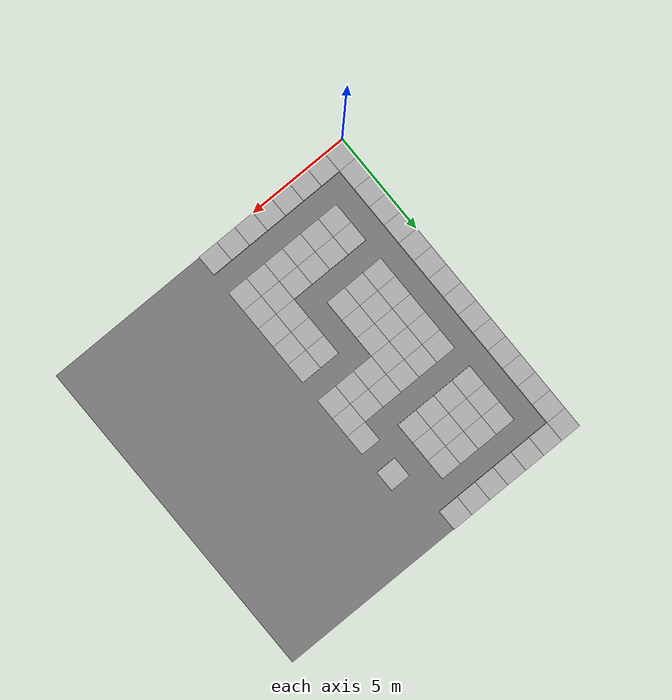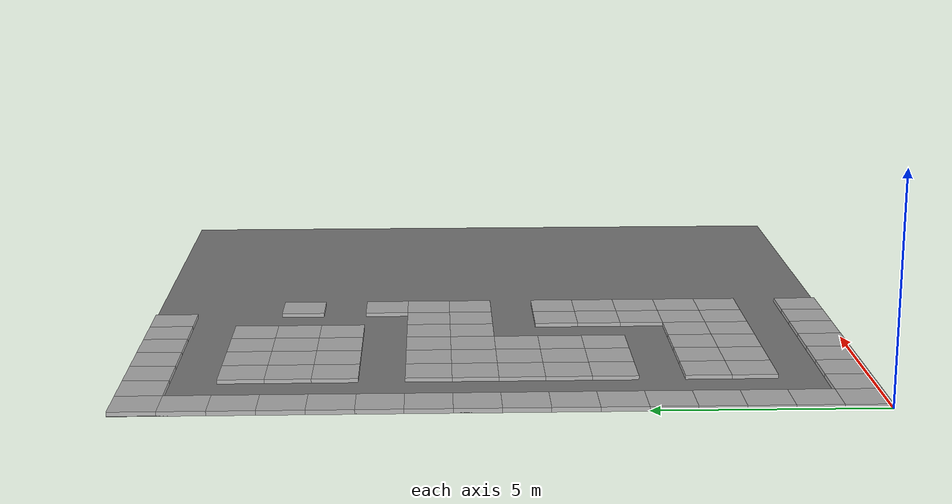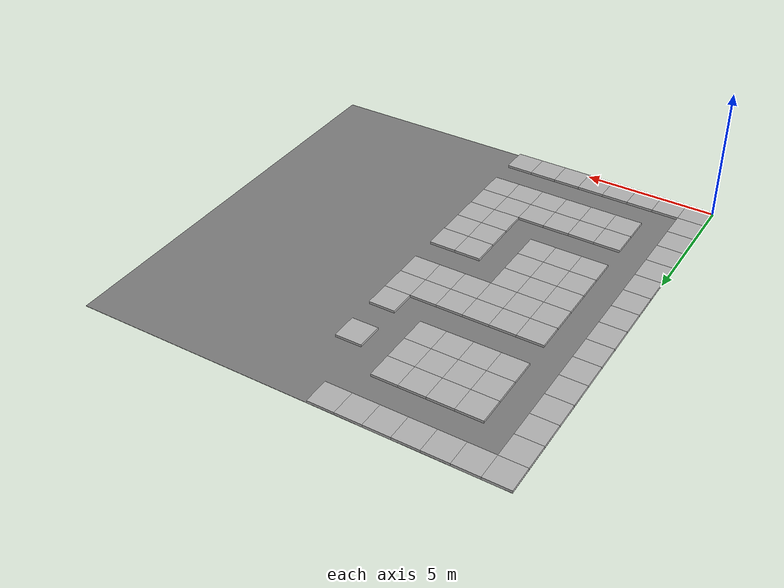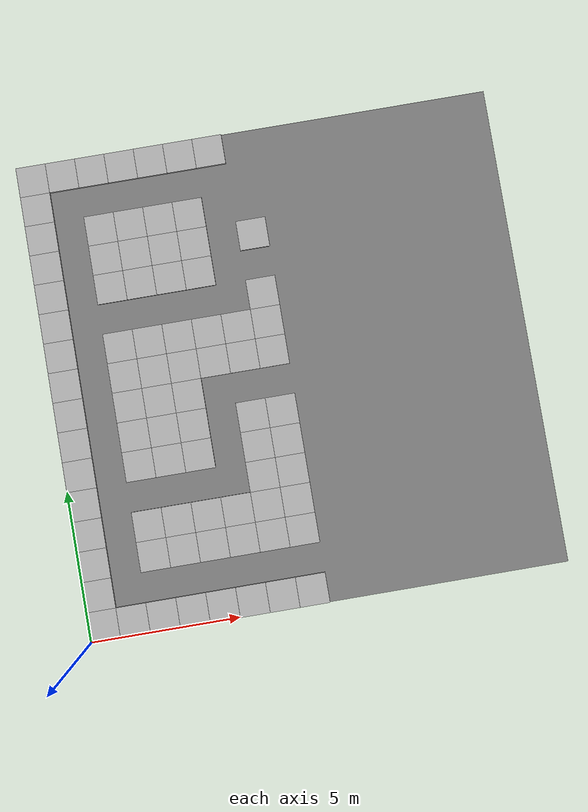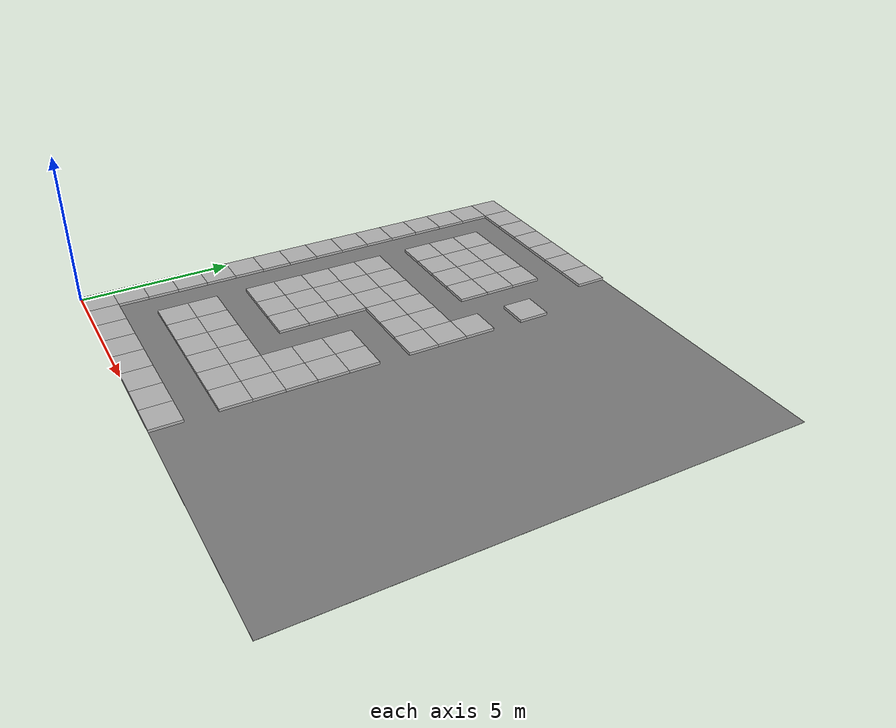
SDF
<sdf version="1.6">
 <world name="default">
  <include><uri>model://sun</uri></include>
  <model name="x0_y0">
   <static>true</static>
   <link name="link">
    <pose>0.5 0.5 0.05 0 0 0</pose>
    <visual name="visual"><geometry><box><size>1 1 0.1</size></box></geometry></visual>
    <collision name="collision"><geometry><box><size>1 1 0.1</size></box></geometry></collision>
   </link>
  </model>
  <model name="x0_y1">
   <static>true</static>
   <link name="link">
    <pose>0.5 1.5 0.05 0 0 0</pose>
    <visual name="visual"><geometry><box><size>1 1 0.1</size></box></geometry></visual>
    <collision name="collision"><geometry><box><size>1 1 0.1</size></box></geometry></collision>
   </link>
  </model>
  <model name="x0_y2">
   <static>true</static>
   <link name="link">
    <pose>0.5 2.5 0.05 0 0 0</pose>
    <visual name="visual"><geometry><box><size>1 1 0.1</size></box></geometry></visual>
    <collision name="collision"><geometry><box><size>1 1 0.1</size></box></geometry></collision>
   </link>
  </model>
  <model name="x0_y3">
   <static>true</static>
   <link name="link">
    <pose>0.5 3.5 0.05 0 0 0</pose>
    <visual name="visual"><geometry><box><size>1 1 0.1</size></box></geometry></visual>
    <collision name="collision"><geometry><box><size>1 1 0.1</size></box></geometry></collision>
   </link>
  </model>
  <model name="x0_y4">
   <static>true</static>
   <link name="link">
    <pose>0.5 4.5 0.05 0 0 0</pose>
    <visual name="visual"><geometry><box><size>1 1 0.1</size></box></geometry></visual>
    <collision name="collision"><geometry><box><size>1 1 0.1</size></box></geometry></collision>
   </link>
  </model>
  <model name="x0_y5">
   <static>true</static>
   <link name="link">
    <pose>0.5 5.5 0.05 0 0 0</pose>
    <visual name="visual"><geometry><box><size>1 1 0.1</size></box></geometry></visual>
    <collision name="collision"><geometry><box><size>1 1 0.1</size></box></geometry></collision>
   </link>
  </model>
  <model name="x0_y6">
   <static>true</static>
   <link name="link">
    <pose>0.5 6.5 0.05 0 0 0</pose>
    <visual name="visual"><geometry><box><size>1 1 0.1</size></box></geometry></visual>
    <collision name="collision"><geometry><box><size>1 1 0.1</size></box></geometry></collision>
   </link>
  </model>
  <model name="x0_y7">
   <static>true</static>
   <link name="link">
    <pose>0.5 7.5 0.05 0 0 0</pose>
    <visual name="visual"><geometry><box><size>1 1 0.1</size></box></geometry></visual>
    <collision name="collision"><geometry><box><size>1 1 0.1</size></box></geometry></collision>
   </link>
  </model>
  <model name="x0_y8">
   <static>true</static>
   <link name="link">
    <pose>0.5 8.5 0.05 0 0 0</pose>
    <visual name="visual"><geometry><box><size>1 1 0.1</size></box></geometry></visual>
    <collision name="collision"><geometry><box><size>1 1 0.1</size></box></geometry></collision>
   </link>
  </model>
  <model name="x0_y9">
   <static>true</static>
   <link name="link">
    <pose>0.5 9.5 0.05 0 0 0</pose>
    <visual name="visual"><geometry><box><size>1 1 0.1</size></box></geometry></visual>
    <collision name="collision"><geometry><box><size>1 1 0.1</size></box></geometry></collision>
   </link>
  </model>
  <model name="x0_y10">
   <static>true</static>
   <link name="link">
    <pose>0.5 10.5 0.05 0 0 0</pose>
    <visual name="visual"><geometry><box><size>1 1 0.1</size></box></geometry></visual>
    <collision name="collision"><geometry><box><size>1 1 0.1</size></box></geometry></collision>
   </link>
  </model>
  <model name="x0_y11">
   <static>true</static>
   <link name="link">
    <pose>0.5 11.5 0.05 0 0 0</pose>
    <visual name="visual"><geometry><box><size>1 1 0.1</size></box></geometry></visual>
    <collision name="collision"><geometry><box><size>1 1 0.1</size></box></geometry></collision>
   </link>
  </model>
  <model name="x0_y12">
   <static>true</static>
   <link name="link">
    <pose>0.5 12.5 0.05 0 0 0</pose>
    <visual name="visual"><geometry><box><size>1 1 0.1</size></box></geometry></visual>
    <collision name="collision"><geometry><box><size>1 1 0.1</size></box></geometry></collision>
   </link>
  </model>
  <model name="x0_y13">
   <static>true</static>
   <link name="link">
    <pose>0.5 13.5 0.05 0 0 0</pose>
    <visual name="visual"><geometry><box><size>1 1 0.1</size></box></geometry></visual>
    <collision name="collision"><geometry><box><size>1 1 0.1</size></box></geometry></collision>
   </link>
  </model>
  <model name="x0_y14">
   <static>true</static>
   <link name="link">
    <pose>0.5 14.5 0.05 0 0 0</pose>
    <visual name="visual"><geometry><box><size>1 1 0.1</size></box></geometry></visual>
    <collision name="collision"><geometry><box><size>1 1 0.1</size></box></geometry></collision>
   </link>
  </model>
  <model name="x0_y15">
   <static>true</static>
   <link name="link">
    <pose>0.5 15.5 0.05 0 0 0</pose>
    <visual name="visual"><geometry><box><size>1 1 0.1</size></box></geometry></visual>
    <collision name="collision"><geometry><box><size>1 1 0.1</size></box></geometry></collision>
   </link>
  </model>
  <model name="x1_y0">
   <static>true</static>
   <link name="link">
    <pose>1.5 0.5 0.05 0 0 0</pose>
    <visual name="visual"><geometry><box><size>1 1 0.1</size></box></geometry></visual>
    <collision name="collision"><geometry><box><size>1 1 0.1</size></box></geometry></collision>
   </link>
  </model>
  <model name="x1_y15">
   <static>true</static>
   <link name="link">
    <pose>1.5 15.5 0.05 0 0 0</pose>
    <visual name="visual"><geometry><box><size>1 1 0.1</size></box></geometry></visual>
    <collision name="collision"><geometry><box><size>1 1 0.1</size></box></geometry></collision>
   </link>
  </model>
  <model name="x2_y0">
   <static>true</static>
   <link name="link">
    <pose>2.5 0.5 0.05 0 0 0</pose>
    <visual name="visual"><geometry><box><size>1 1 0.1</size></box></geometry></visual>
    <collision name="collision"><geometry><box><size>1 1 0.1</size></box></geometry></collision>
   </link>
  </model>
  <model name="x2_y2">
   <static>true</static>
   <link name="link">
    <pose>2.5 2.5 0.05 0 0 0</pose>
    <visual name="visual"><geometry><box><size>1 1 0.1</size></box></geometry></visual>
    <collision name="collision"><geometry><box><size>1 1 0.1</size></box></geometry></collision>
   </link>
  </model>
  <model name="x2_y3">
   <static>true</static>
   <link name="link">
    <pose>2.5 3.5 0.05 0 0 0</pose>
    <visual name="visual"><geometry><box><size>1 1 0.1</size></box></geometry></visual>
    <collision name="collision"><geometry><box><size>1 1 0.1</size></box></geometry></collision>
   </link>
  </model>
  <model name="x2_y5">
   <static>true</static>
   <link name="link">
    <pose>2.5 5.5 0.05 0 0 0</pose>
    <visual name="visual"><geometry><box><size>1 1 0.1</size></box></geometry></visual>
    <collision name="collision"><geometry><box><size>1 1 0.1</size></box></geometry></collision>
   </link>
  </model>
  <model name="x2_y6">
   <static>true</static>
   <link name="link">
    <pose>2.5 6.5 0.05 0 0 0</pose>
    <visual name="visual"><geometry><box><size>1 1 0.1</size></box></geometry></visual>
    <collision name="collision"><geometry><box><size>1 1 0.1</size></box></geometry></collision>
   </link>
  </model>
  <model name="x2_y7">
   <static>true</static>
   <link name="link">
    <pose>2.5 7.5 0.05 0 0 0</pose>
    <visual name="visual"><geometry><box><size>1 1 0.1</size></box></geometry></visual>
    <collision name="collision"><geometry><box><size>1 1 0.1</size></box></geometry></collision>
   </link>
  </model>
  <model name="x2_y8">
   <static>true</static>
   <link name="link">
    <pose>2.5 8.5 0.05 0 0 0</pose>
    <visual name="visual"><geometry><box><size>1 1 0.1</size></box></geometry></visual>
    <collision name="collision"><geometry><box><size>1 1 0.1</size></box></geometry></collision>
   </link>
  </model>
  <model name="x2_y9">
   <static>true</static>
   <link name="link">
    <pose>2.5 9.5 0.05 0 0 0</pose>
    <visual name="visual"><geometry><box><size>1 1 0.1</size></box></geometry></visual>
    <collision name="collision"><geometry><box><size>1 1 0.1</size></box></geometry></collision>
   </link>
  </model>
  <model name="x2_y11">
   <static>true</static>
   <link name="link">
    <pose>2.5 11.5 0.05 0 0 0</pose>
    <visual name="visual"><geometry><box><size>1 1 0.1</size></box></geometry></visual>
    <collision name="collision"><geometry><box><size>1 1 0.1</size></box></geometry></collision>
   </link>
  </model>
  <model name="x2_y12">
   <static>true</static>
   <link name="link">
    <pose>2.5 12.5 0.05 0 0 0</pose>
    <visual name="visual"><geometry><box><size>1 1 0.1</size></box></geometry></visual>
    <collision name="collision"><geometry><box><size>1 1 0.1</size></box></geometry></collision>
   </link>
  </model>
  <model name="x2_y13">
   <static>true</static>
   <link name="link">
    <pose>2.5 13.5 0.05 0 0 0</pose>
    <visual name="visual"><geometry><box><size>1 1 0.1</size></box></geometry></visual>
    <collision name="collision"><geometry><box><size>1 1 0.1</size></box></geometry></collision>
   </link>
  </model>
  <model name="x2_y15">
   <static>true</static>
   <link name="link">
    <pose>2.5 15.5 0.05 0 0 0</pose>
    <visual name="visual"><geometry><box><size>1 1 0.1</size></box></geometry></visual>
    <collision name="collision"><geometry><box><size>1 1 0.1</size></box></geometry></collision>
   </link>
  </model>
  <model name="x3_y0">
   <static>true</static>
   <link name="link">
    <pose>3.5 0.5 0.05 0 0 0</pose>
    <visual name="visual"><geometry><box><size>1 1 0.1</size></box></geometry></visual>
    <collision name="collision"><geometry><box><size>1 1 0.1</size></box></geometry></collision>
   </link>
  </model>
  <model name="x3_y2">
   <static>true</static>
   <link name="link">
    <pose>3.5 2.5 0.05 0 0 0</pose>
    <visual name="visual"><geometry><box><size>1 1 0.1</size></box></geometry></visual>
    <collision name="collision"><geometry><box><size>1 1 0.1</size></box></geometry></collision>
   </link>
  </model>
  <model name="x3_y3">
   <static>true</static>
   <link name="link">
    <pose>3.5 3.5 0.05 0 0 0</pose>
    <visual name="visual"><geometry><box><size>1 1 0.1</size></box></geometry></visual>
    <collision name="collision"><geometry><box><size>1 1 0.1</size></box></geometry></collision>
   </link>
  </model>
  <model name="x3_y5">
   <static>true</static>
   <link name="link">
    <pose>3.5 5.5 0.05 0 0 0</pose>
    <visual name="visual"><geometry><box><size>1 1 0.1</size></box></geometry></visual>
    <collision name="collision"><geometry><box><size>1 1 0.1</size></box></geometry></collision>
   </link>
  </model>
  <model name="x3_y6">
   <static>true</static>
   <link name="link">
    <pose>3.5 6.5 0.05 0 0 0</pose>
    <visual name="visual"><geometry><box><size>1 1 0.1</size></box></geometry></visual>
    <collision name="collision"><geometry><box><size>1 1 0.1</size></box></geometry></collision>
   </link>
  </model>
  <model name="x3_y7">
   <static>true</static>
   <link name="link">
    <pose>3.5 7.5 0.05 0 0 0</pose>
    <visual name="visual"><geometry><box><size>1 1 0.1</size></box></geometry></visual>
    <collision name="collision"><geometry><box><size>1 1 0.1</size></box></geometry></collision>
   </link>
  </model>
  <model name="x3_y8">
   <static>true</static>
   <link name="link">
    <pose>3.5 8.5 0.05 0 0 0</pose>
    <visual name="visual"><geometry><box><size>1 1 0.1</size></box></geometry></visual>
    <collision name="collision"><geometry><box><size>1 1 0.1</size></box></geometry></collision>
   </link>
  </model>
  <model name="x3_y9">
   <static>true</static>
   <link name="link">
    <pose>3.5 9.5 0.05 0 0 0</pose>
    <visual name="visual"><geometry><box><size>1 1 0.1</size></box></geometry></visual>
    <collision name="collision"><geometry><box><size>1 1 0.1</size></box></geometry></collision>
   </link>
  </model>
  <model name="x3_y11">
   <static>true</static>
   <link name="link">
    <pose>3.5 11.5 0.05 0 0 0</pose>
    <visual name="visual"><geometry><box><size>1 1 0.1</size></box></geometry></visual>
    <collision name="collision"><geometry><box><size>1 1 0.1</size></box></geometry></collision>
   </link>
  </model>
  <model name="x3_y12">
   <static>true</static>
   <link name="link">
    <pose>3.5 12.5 0.05 0 0 0</pose>
    <visual name="visual"><geometry><box><size>1 1 0.1</size></box></geometry></visual>
    <collision name="collision"><geometry><box><size>1 1 0.1</size></box></geometry></collision>
   </link>
  </model>
  <model name="x3_y13">
   <static>true</static>
   <link name="link">
    <pose>3.5 13.5 0.05 0 0 0</pose>
    <visual name="visual"><geometry><box><size>1 1 0.1</size></box></geometry></visual>
    <collision name="collision"><geometry><box><size>1 1 0.1</size></box></geometry></collision>
   </link>
  </model>
  <model name="x3_y15">
   <static>true</static>
   <link name="link">
    <pose>3.5 15.5 0.05 0 0 0</pose>
    <visual name="visual"><geometry><box><size>1 1 0.1</size></box></geometry></visual>
    <collision name="collision"><geometry><box><size>1 1 0.1</size></box></geometry></collision>
   </link>
  </model>
  <model name="x4_y0">
   <static>true</static>
   <link name="link">
    <pose>4.5 0.5 0.05 0 0 0</pose>
    <visual name="visual"><geometry><box><size>1 1 0.1</size></box></geometry></visual>
    <collision name="collision"><geometry><box><size>1 1 0.1</size></box></geometry></collision>
   </link>
  </model>
  <model name="x4_y2">
   <static>true</static>
   <link name="link">
    <pose>4.5 2.5 0.05 0 0 0</pose>
    <visual name="visual"><geometry><box><size>1 1 0.1</size></box></geometry></visual>
    <collision name="collision"><geometry><box><size>1 1 0.1</size></box></geometry></collision>
   </link>
  </model>
  <model name="x4_y3">
   <static>true</static>
   <link name="link">
    <pose>4.5 3.5 0.05 0 0 0</pose>
    <visual name="visual"><geometry><box><size>1 1 0.1</size></box></geometry></visual>
    <collision name="collision"><geometry><box><size>1 1 0.1</size></box></geometry></collision>
   </link>
  </model>
  <model name="x4_y5">
   <static>true</static>
   <link name="link">
    <pose>4.5 5.5 0.05 0 0 0</pose>
    <visual name="visual"><geometry><box><size>1 1 0.1</size></box></geometry></visual>
    <collision name="collision"><geometry><box><size>1 1 0.1</size></box></geometry></collision>
   </link>
  </model>
  <model name="x4_y6">
   <static>true</static>
   <link name="link">
    <pose>4.5 6.5 0.05 0 0 0</pose>
    <visual name="visual"><geometry><box><size>1 1 0.1</size></box></geometry></visual>
    <collision name="collision"><geometry><box><size>1 1 0.1</size></box></geometry></collision>
   </link>
  </model>
  <model name="x4_y7">
   <static>true</static>
   <link name="link">
    <pose>4.5 7.5 0.05 0 0 0</pose>
    <visual name="visual"><geometry><box><size>1 1 0.1</size></box></geometry></visual>
    <collision name="collision"><geometry><box><size>1 1 0.1</size></box></geometry></collision>
   </link>
  </model>
  <model name="x4_y8">
   <static>true</static>
   <link name="link">
    <pose>4.5 8.5 0.05 0 0 0</pose>
    <visual name="visual"><geometry><box><size>1 1 0.1</size></box></geometry></visual>
    <collision name="collision"><geometry><box><size>1 1 0.1</size></box></geometry></collision>
   </link>
  </model>
  <model name="x4_y9">
   <static>true</static>
   <link name="link">
    <pose>4.5 9.5 0.05 0 0 0</pose>
    <visual name="visual"><geometry><box><size>1 1 0.1</size></box></geometry></visual>
    <collision name="collision"><geometry><box><size>1 1 0.1</size></box></geometry></collision>
   </link>
  </model>
  <model name="x4_y11">
   <static>true</static>
   <link name="link">
    <pose>4.5 11.5 0.05 0 0 0</pose>
    <visual name="visual"><geometry><box><size>1 1 0.1</size></box></geometry></visual>
    <collision name="collision"><geometry><box><size>1 1 0.1</size></box></geometry></collision>
   </link>
  </model>
  <model name="x4_y12">
   <static>true</static>
   <link name="link">
    <pose>4.5 12.5 0.05 0 0 0</pose>
    <visual name="visual"><geometry><box><size>1 1 0.1</size></box></geometry></visual>
    <collision name="collision"><geometry><box><size>1 1 0.1</size></box></geometry></collision>
   </link>
  </model>
  <model name="x4_y13">
   <static>true</static>
   <link name="link">
    <pose>4.5 13.5 0.05 0 0 0</pose>
    <visual name="visual"><geometry><box><size>1 1 0.1</size></box></geometry></visual>
    <collision name="collision"><geometry><box><size>1 1 0.1</size></box></geometry></collision>
   </link>
  </model>
  <model name="x4_y15">
   <static>true</static>
   <link name="link">
    <pose>4.5 15.5 0.05 0 0 0</pose>
    <visual name="visual"><geometry><box><size>1 1 0.1</size></box></geometry></visual>
    <collision name="collision"><geometry><box><size>1 1 0.1</size></box></geometry></collision>
   </link>
  </model>
  <model name="x5_y0">
   <static>true</static>
   <link name="link">
    <pose>5.5 0.5 0.05 0 0 0</pose>
    <visual name="visual"><geometry><box><size>1 1 0.1</size></box></geometry></visual>
    <collision name="collision"><geometry><box><size>1 1 0.1</size></box></geometry></collision>
   </link>
  </model>
  <model name="x5_y2">
   <static>true</static>
   <link name="link">
    <pose>5.5 2.5 0.05 0 0 0</pose>
    <visual name="visual"><geometry><box><size>1 1 0.1</size></box></geometry></visual>
    <collision name="collision"><geometry><box><size>1 1 0.1</size></box></geometry></collision>
   </link>
  </model>
  <model name="x5_y3">
   <static>true</static>
   <link name="link">
    <pose>5.5 3.5 0.05 0 0 0</pose>
    <visual name="visual"><geometry><box><size>1 1 0.1</size></box></geometry></visual>
    <collision name="collision"><geometry><box><size>1 1 0.1</size></box></geometry></collision>
   </link>
  </model>
  <model name="x5_y8">
   <static>true</static>
   <link name="link">
    <pose>5.5 8.5 0.05 0 0 0</pose>
    <visual name="visual"><geometry><box><size>1 1 0.1</size></box></geometry></visual>
    <collision name="collision"><geometry><box><size>1 1 0.1</size></box></geometry></collision>
   </link>
  </model>
  <model name="x5_y9">
   <static>true</static>
   <link name="link">
    <pose>5.5 9.5 0.05 0 0 0</pose>
    <visual name="visual"><geometry><box><size>1 1 0.1</size></box></geometry></visual>
    <collision name="collision"><geometry><box><size>1 1 0.1</size></box></geometry></collision>
   </link>
  </model>
  <model name="x5_y11">
   <static>true</static>
   <link name="link">
    <pose>5.5 11.5 0.05 0 0 0</pose>
    <visual name="visual"><geometry><box><size>1 1 0.1</size></box></geometry></visual>
    <collision name="collision"><geometry><box><size>1 1 0.1</size></box></geometry></collision>
   </link>
  </model>
  <model name="x5_y12">
   <static>true</static>
   <link name="link">
    <pose>5.5 12.5 0.05 0 0 0</pose>
    <visual name="visual"><geometry><box><size>1 1 0.1</size></box></geometry></visual>
    <collision name="collision"><geometry><box><size>1 1 0.1</size></box></geometry></collision>
   </link>
  </model>
  <model name="x5_y13">
   <static>true</static>
   <link name="link">
    <pose>5.5 13.5 0.05 0 0 0</pose>
    <visual name="visual"><geometry><box><size>1 1 0.1</size></box></geometry></visual>
    <collision name="collision"><geometry><box><size>1 1 0.1</size></box></geometry></collision>
   </link>
  </model>
  <model name="x5_y15">
   <static>true</static>
   <link name="link">
    <pose>5.5 15.5 0.05 0 0 0</pose>
    <visual name="visual"><geometry><box><size>1 1 0.1</size></box></geometry></visual>
    <collision name="collision"><geometry><box><size>1 1 0.1</size></box></geometry></collision>
   </link>
  </model>
  <model name="x6_y0">
   <static>true</static>
   <link name="link">
    <pose>6.5 0.5 0.05 0 0 0</pose>
    <visual name="visual"><geometry><box><size>1 1 0.1</size></box></geometry></visual>
    <collision name="collision"><geometry><box><size>1 1 0.1</size></box></geometry></collision>
   </link>
  </model>
  <model name="x6_y2">
   <static>true</static>
   <link name="link">
    <pose>6.5 2.5 0.05 0 0 0</pose>
    <visual name="visual"><geometry><box><size>1 1 0.1</size></box></geometry></visual>
    <collision name="collision"><geometry><box><size>1 1 0.1</size></box></geometry></collision>
   </link>
  </model>
  <model name="x6_y3">
   <static>true</static>
   <link name="link">
    <pose>6.5 3.5 0.05 0 0 0</pose>
    <visual name="visual"><geometry><box><size>1 1 0.1</size></box></geometry></visual>
    <collision name="collision"><geometry><box><size>1 1 0.1</size></box></geometry></collision>
   </link>
  </model>
  <model name="x6_y4">
   <static>true</static>
   <link name="link">
    <pose>6.5 4.5 0.05 0 0 0</pose>
    <visual name="visual"><geometry><box><size>1 1 0.1</size></box></geometry></visual>
    <collision name="collision"><geometry><box><size>1 1 0.1</size></box></geometry></collision>
   </link>
  </model>
  <model name="x6_y5">
   <static>true</static>
   <link name="link">
    <pose>6.5 5.5 0.05 0 0 0</pose>
    <visual name="visual"><geometry><box><size>1 1 0.1</size></box></geometry></visual>
    <collision name="collision"><geometry><box><size>1 1 0.1</size></box></geometry></collision>
   </link>
  </model>
  <model name="x6_y6">
   <static>true</static>
   <link name="link">
    <pose>6.5 6.5 0.05 0 0 0</pose>
    <visual name="visual"><geometry><box><size>1 1 0.1</size></box></geometry></visual>
    <collision name="collision"><geometry><box><size>1 1 0.1</size></box></geometry></collision>
   </link>
  </model>
  <model name="x6_y8">
   <static>true</static>
   <link name="link">
    <pose>6.5 8.5 0.05 0 0 0</pose>
    <visual name="visual"><geometry><box><size>1 1 0.1</size></box></geometry></visual>
    <collision name="collision"><geometry><box><size>1 1 0.1</size></box></geometry></collision>
   </link>
  </model>
  <model name="x6_y9">
   <static>true</static>
   <link name="link">
    <pose>6.5 9.5 0.05 0 0 0</pose>
    <visual name="visual"><geometry><box><size>1 1 0.1</size></box></geometry></visual>
    <collision name="collision"><geometry><box><size>1 1 0.1</size></box></geometry></collision>
   </link>
  </model>
  <model name="x6_y15">
   <static>true</static>
   <link name="link">
    <pose>6.5 15.5 0.05 0 0 0</pose>
    <visual name="visual"><geometry><box><size>1 1 0.1</size></box></geometry></visual>
    <collision name="collision"><geometry><box><size>1 1 0.1</size></box></geometry></collision>
   </link>
  </model>
  <model name="x7_y0">
   <static>true</static>
   <link name="link">
    <pose>7.5 0.5 0.05 0 0 0</pose>
    <visual name="visual"><geometry><box><size>1 1 0.1</size></box></geometry></visual>
    <collision name="collision"><geometry><box><size>1 1 0.1</size></box></geometry></collision>
   </link>
  </model>
  <model name="x7_y2">
   <static>true</static>
   <link name="link">
    <pose>7.5 2.5 0.05 0 0 0</pose>
    <visual name="visual"><geometry><box><size>1 1 0.1</size></box></geometry></visual>
    <collision name="collision"><geometry><box><size>1 1 0.1</size></box></geometry></collision>
   </link>
  </model>
  <model name="x7_y3">
   <static>true</static>
   <link name="link">
    <pose>7.5 3.5 0.05 0 0 0</pose>
    <visual name="visual"><geometry><box><size>1 1 0.1</size></box></geometry></visual>
    <collision name="collision"><geometry><box><size>1 1 0.1</size></box></geometry></collision>
   </link>
  </model>
  <model name="x7_y4">
   <static>true</static>
   <link name="link">
    <pose>7.5 4.5 0.05 0 0 0</pose>
    <visual name="visual"><geometry><box><size>1 1 0.1</size></box></geometry></visual>
    <collision name="collision"><geometry><box><size>1 1 0.1</size></box></geometry></collision>
   </link>
  </model>
  <model name="x7_y5">
   <static>true</static>
   <link name="link">
    <pose>7.5 5.5 0.05 0 0 0</pose>
    <visual name="visual"><geometry><box><size>1 1 0.1</size></box></geometry></visual>
    <collision name="collision"><geometry><box><size>1 1 0.1</size></box></geometry></collision>
   </link>
  </model>
  <model name="x7_y6">
   <static>true</static>
   <link name="link">
    <pose>7.5 6.5 0.05 0 0 0</pose>
    <visual name="visual"><geometry><box><size>1 1 0.1</size></box></geometry></visual>
    <collision name="collision"><geometry><box><size>1 1 0.1</size></box></geometry></collision>
   </link>
  </model>
  <model name="x7_y8">
   <static>true</static>
   <link name="link">
    <pose>7.5 8.5 0.05 0 0 0</pose>
    <visual name="visual"><geometry><box><size>1 1 0.1</size></box></geometry></visual>
    <collision name="collision"><geometry><box><size>1 1 0.1</size></box></geometry></collision>
   </link>
  </model>
  <model name="x7_y9">
   <static>true</static>
   <link name="link">
    <pose>7.5 9.5 0.05 0 0 0</pose>
    <visual name="visual"><geometry><box><size>1 1 0.1</size></box></geometry></visual>
    <collision name="collision"><geometry><box><size>1 1 0.1</size></box></geometry></collision>
   </link>
  </model>
  <model name="x7_y10">
   <static>true</static>
   <link name="link">
    <pose>7.5 10.5 0.05 0 0 0</pose>
    <visual name="visual"><geometry><box><size>1 1 0.1</size></box></geometry></visual>
    <collision name="collision"><geometry><box><size>1 1 0.1</size></box></geometry></collision>
   </link>
  </model>
  <model name="x7_y12">
   <static>true</static>
   <link name="link">
    <pose>7.5 12.5 0.05 0 0 0</pose>
    <visual name="visual"><geometry><box><size>1 1 0.1</size></box></geometry></visual>
    <collision name="collision"><geometry><box><size>1 1 0.1</size></box></geometry></collision>
   </link>
  </model>
  <model name="ground">
   <static>true</static>
   <link name="link">
    <pose>8 8 0.005 0 0 0</pose>
    <visual name="visual">
     <geometry><box><size>16 16 0.01</size></box></geometry>
     <material>
      <ambient>0.5 0.5 0.5 1</ambient>
      <diffuse>0.5 0.5 0.5 1</diffuse>
      <specular>0 0 0 0</specular>
      <emissive>0 0 0 1</emissive>
     </material>
    </visual>
    <collision name="collision"><geometry><box><size>16 16 0.01</size></box></geometry></collision>
   </link>
  </model>
 </world>
</sdf>
